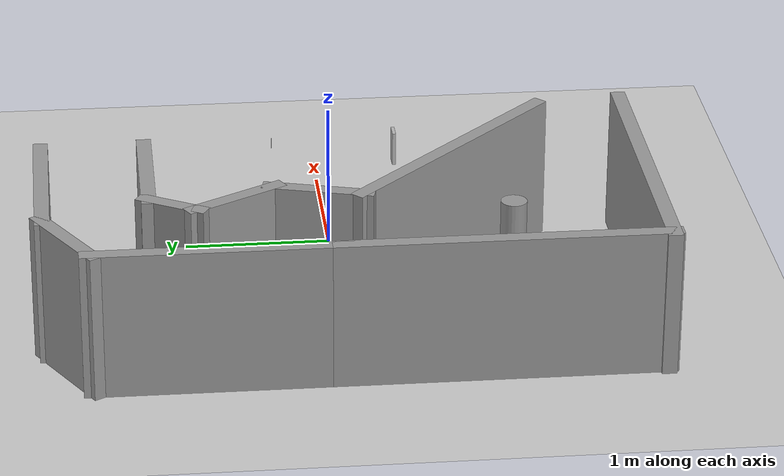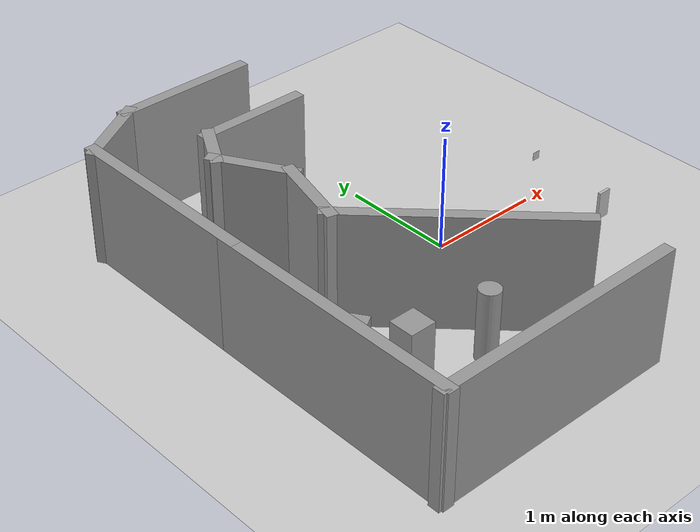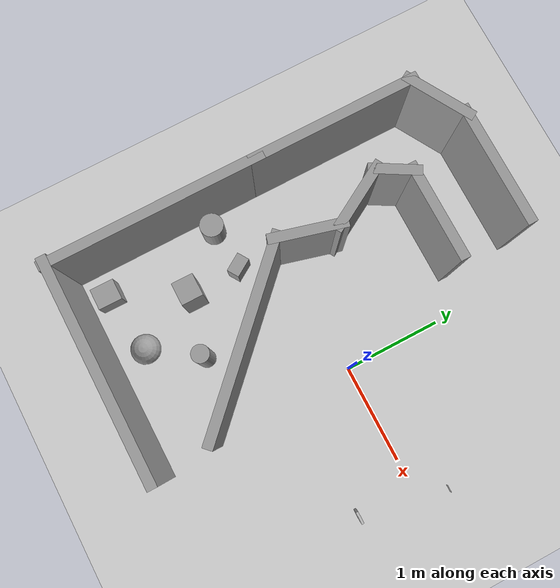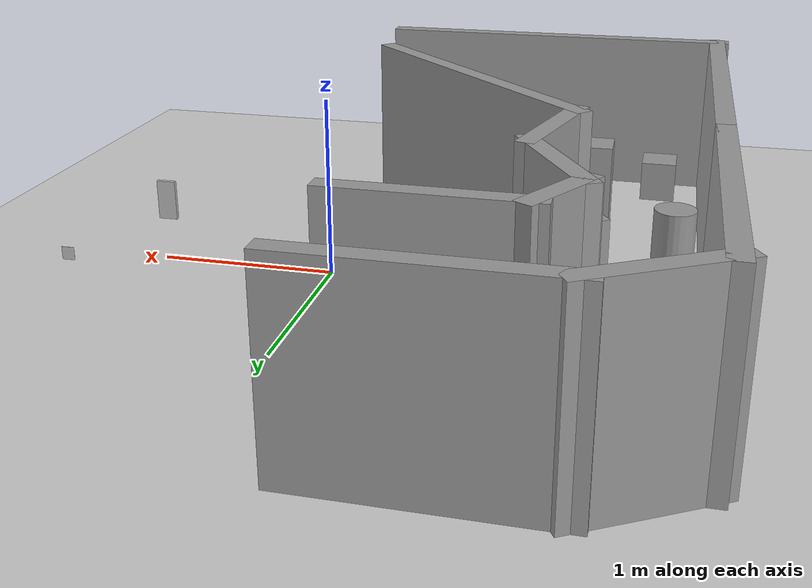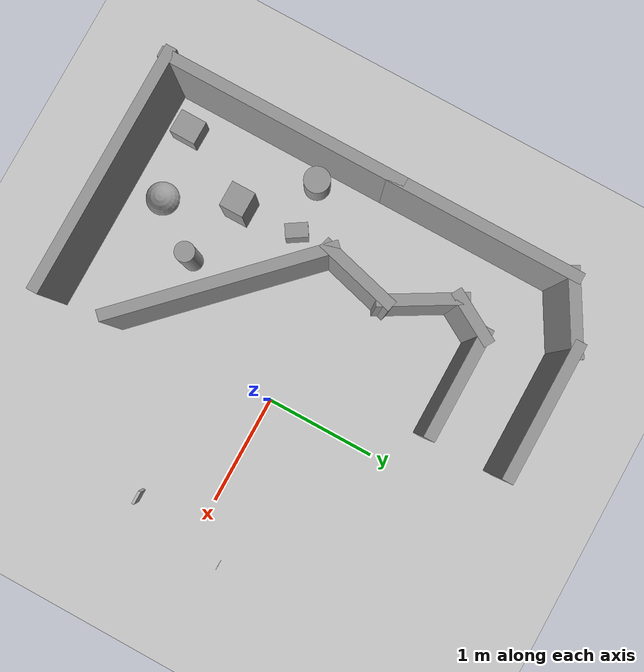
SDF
<sdf version="1.7">
 <world name="capstone_project">
  <scene>
   <ambient>0 0 0 1</ambient>
   <shadows>0</shadows>
   <grid>0</grid>
   <background>0.7 0.7 0.7 1</background>
  </scene>
  <light name="sun" type="directional">
   <pose>0 0 10 0 -0 0</pose>
   <diffuse>0.8 0.8 0.8 1</diffuse>
   <specular>0.1 0.1 0.1 1</specular>
   <attenuation>
    <range>1000</range>
    <constant>0.9</constant>
    <linear>0.01</linear>
    <quadratic>0.001</quadratic>
   </attenuation>
   <direction>-0.5 0.5 -1</direction>
   <spot><inner_angle>0</inner_angle><outer_angle>0</outer_angle><falloff>0</falloff></spot>
  </light>
  <gravity>0 0 -9.8</gravity>
  <magnetic_field>6e-06 2.3e-05 -4.2e-05</magnetic_field>
  <atmosphere type="adiabatic"/>
  <physics name="default_physics" default="0" type="ode">
   <max_step_size>0.001</max_step_size>
   <real_time_factor>1</real_time_factor>
   <real_time_update_rate>1000</real_time_update_rate>
  </physics>
  <spherical_coordinates>
   <surface_model>EARTH_WGS84</surface_model>
   <latitude_deg>0</latitude_deg>
   <longitude_deg>0</longitude_deg>
   <elevation>0</elevation>
   <heading_deg>0</heading_deg>
  </spherical_coordinates>
  <light name="user_point_light_2" type="point">
   <pose>-0.948146 0.604519 1 0 -0 0</pose>
   <diffuse>0.5 0.5 0.5 1</diffuse>
   <specular>0.1 0.1 0.1 1</specular>
   <attenuation>
    <range>20</range>
    <constant>0.5</constant>
    <linear>0.01</linear>
    <quadratic>0.001</quadratic>
   </attenuation>
   <cast_shadows>0</cast_shadows>
   <direction>0 0 -1</direction>
   <spot><inner_angle>0</inner_angle><outer_angle>0</outer_angle><falloff>0</falloff></spot>
  </light>
  <light name="user_point_light_6" type="point">
   <pose>1.63854 1.69565 1 0 -0 0</pose>
   <diffuse>0.5 0.5 0.5 1</diffuse>
   <specular>0.1 0.1 0.1 1</specular>
   <attenuation>
    <range>20</range>
    <constant>0.5</constant>
    <linear>0.01</linear>
    <quadratic>0.001</quadratic>
   </attenuation>
   <cast_shadows>0</cast_shadows>
   <direction>0 0 -1</direction>
   <spot><inner_angle>0</inner_angle><outer_angle>0</outer_angle><falloff>0</falloff></spot>
  </light>
  <light name="user_point_light_7" type="point">
   <pose>0.42 -3.31 1 0 -0 0</pose>
   <diffuse>0.5 0.5 0.5 1</diffuse>
   <specular>0.1 0.1 0.1 1</specular>
   <attenuation>
    <range>20</range>
    <constant>0.5</constant>
    <linear>0.01</linear>
    <quadratic>0.001</quadratic>
   </attenuation>
   <cast_shadows>0</cast_shadows>
   <direction>0 0 -1</direction>
   <spot><inner_angle>0</inner_angle><outer_angle>0</outer_angle><falloff>0</falloff></spot>
  </light>
  <light name="user_point_light_8" type="point">
   <pose>-1.8 1.5 1 0 -0 0</pose>
   <diffuse>0.5 0.5 0.5 1</diffuse>
   <specular>0.1 0.1 0.1 1</specular>
   <attenuation>
    <range>20</range>
    <constant>0.5</constant>
    <linear>0.01</linear>
    <quadratic>0.001</quadratic>
   </attenuation>
   <cast_shadows>0</cast_shadows>
   <direction>0 0 -1</direction>
   <spot><inner_angle>0</inner_angle><outer_angle>0</outer_angle><falloff>0</falloff></spot>
  </light>
  <model name="walls">
   <link name="Wall_10">
    <pose>0.35664 -0.75882 0 0 -0 2.35619</pose>
    <inertial>
     <mass>1</mass>
     <inertia><ixx>1</ixx><ixy>0</ixy><ixz>0</ixz><iyy>1</iyy><iyz>0</iyz><izz>1</izz></inertia>
    </inertial>
    <visual name="Wall_10_Visual">
     <pose>0 0 0.5 0 -0 0</pose>
     <geometry><box><size>2 0.1 1</size></box></geometry>
     <material>
      <script><uri>file://media/materials/scripts/gazebo.material</uri><name>Gazebo/Grey</name></script>
      <ambient>1 1 1 1</ambient>
      <shader type="pixel"><normal_map>__default__</normal_map></shader>
     </material>
    </visual>
    <collision name="Wall_10_Collision">
     <pose>0 0 0.5 0 -0 0</pose>
     <geometry><box><size>2 0.1 1</size></box></geometry>
     <surface>
      <friction>
       <ode><mu>1</mu><mu2>1</mu2><fdir1>0 0 0</fdir1><slip1>0</slip1><slip2>0</slip2></ode>
       <torsional>
        <coefficient>1</coefficient>
        <patch_radius>0</patch_radius>
        <surface_radius>0</surface_radius>
        <use_patch_radius>1</use_patch_radius>
        <ode><slip>0</slip></ode>
       </torsional>
      </friction>
      <bounce><restitution_coefficient>0</restitution_coefficient><threshold>1e+06</threshold></bounce>
      <contact>
       <collide_without_contact>0</collide_without_contact>
       <collide_without_contact_bitmask>1</collide_without_contact_bitmask>
       <collide_bitmask>1</collide_bitmask>
       <ode>
        <soft_cfm>0</soft_cfm>
        <soft_erp>0.2</soft_erp>
        <kp>1e+13</kp>
        <kd>1</kd>
        <max_vel>0.01</max_vel>
        <min_depth>0</min_depth>
       </ode>
       <bullet>
        <split_impulse>1</split_impulse>
        <split_impulse_penetration_threshold>-0.01</split_impulse_penetration_threshold>
        <soft_cfm>0</soft_cfm>
        <soft_erp>0.2</soft_erp>
        <kp>1e+13</kp>
        <kd>1</kd>
       </bullet>
      </contact>
     </surface>
    </collision>
   </link>
   <link name="Wall_12">
    <pose>0.01372 -2.01873 0 0 -0 3.14159</pose>
    <visual name="Wall_12_Visual">
     <pose>0 0 0.5 0 -0 0</pose>
     <geometry><box><size>2.26002 0.1 1</size></box></geometry>
     <material>
      <script><uri>file://media/materials/scripts/gazebo.material</uri><name>Gazebo/Grey</name></script>
      <ambient>1 1 1 1</ambient>
      <shader type="pixel"/>
     </material>
    </visual>
    <collision name="Wall_12_Collision">
     <pose>0 0 0.5 0 -0 0</pose>
     <geometry><box><size>2.26002 0.1 1</size></box></geometry>
     <surface>
      <friction>
       <ode><mu>1</mu><mu2>1</mu2><fdir1>0 0 0</fdir1><slip1>0</slip1><slip2>0</slip2></ode>
       <torsional>
        <coefficient>1</coefficient>
        <patch_radius>0</patch_radius>
        <surface_radius>0</surface_radius>
        <use_patch_radius>1</use_patch_radius>
        <ode><slip>0</slip></ode>
       </torsional>
      </friction>
      <bounce><restitution_coefficient>0</restitution_coefficient><threshold>1e+06</threshold></bounce>
      <contact>
       <collide_without_contact>0</collide_without_contact>
       <collide_without_contact_bitmask>1</collide_without_contact_bitmask>
       <collide_bitmask>1</collide_bitmask>
       <ode>
        <soft_cfm>0</soft_cfm>
        <soft_erp>0.2</soft_erp>
        <kp>1e+13</kp>
        <kd>1</kd>
        <max_vel>0.01</max_vel>
        <min_depth>0</min_depth>
       </ode>
       <bullet>
        <split_impulse>1</split_impulse>
        <split_impulse_penetration_threshold>-0.01</split_impulse_penetration_threshold>
        <soft_cfm>0</soft_cfm>
        <soft_erp>0.2</soft_erp>
        <kp>1e+13</kp>
        <kd>1</kd>
       </bullet>
      </contact>
     </surface>
    </collision>
   </link>
   <link name="Wall_13">
    <pose>-1.04128 -0.958726 0 0 -0 1.5708</pose>
    <visual name="Wall_13_Visual">
     <pose>0 0 0.5 0 -0 0</pose>
     <geometry><box><size>2.25 0.1 1</size></box></geometry>
     <material>
      <script><uri>file://media/materials/scripts/gazebo.material</uri><name>Gazebo/Grey</name></script>
      <ambient>1 1 1 1</ambient>
      <shader type="pixel"/>
     </material>
    </visual>
    <collision name="Wall_13_Collision">
     <pose>0 0 0.5 0 -0 0</pose>
     <geometry><box><size>2.25 0.1 1</size></box></geometry>
     <surface>
      <friction>
       <ode><mu>1</mu><mu2>1</mu2><fdir1>0 0 0</fdir1><slip1>0</slip1><slip2>0</slip2></ode>
       <torsional>
        <coefficient>1</coefficient>
        <patch_radius>0</patch_radius>
        <surface_radius>0</surface_radius>
        <use_patch_radius>1</use_patch_radius>
        <ode><slip>0</slip></ode>
       </torsional>
      </friction>
      <bounce><restitution_coefficient>0</restitution_coefficient><threshold>1e+06</threshold></bounce>
      <contact>
       <collide_without_contact>0</collide_without_contact>
       <collide_without_contact_bitmask>1</collide_without_contact_bitmask>
       <collide_bitmask>1</collide_bitmask>
       <ode>
        <soft_cfm>0</soft_cfm>
        <soft_erp>0.2</soft_erp>
        <kp>1e+13</kp>
        <kd>1</kd>
        <max_vel>0.01</max_vel>
        <min_depth>0</min_depth>
       </ode>
       <bullet>
        <split_impulse>1</split_impulse>
        <split_impulse_penetration_threshold>-0.01</split_impulse_penetration_threshold>
        <soft_cfm>0</soft_cfm>
        <soft_erp>0.2</soft_erp>
        <kp>1e+13</kp>
        <kd>1</kd>
       </bullet>
      </contact>
     </surface>
    </collision>
   </link>
   <link name="Wall_19">
    <pose>-1.04128 0.891274 0 0 -0 1.5708</pose>
    <visual name="Wall_19_Visual">
     <pose>0 0 0.5 0 -0 0</pose>
     <geometry><box><size>1.75 0.1 1</size></box></geometry>
     <material>
      <script><uri>file://media/materials/scripts/gazebo.material</uri><name>Gazebo/Grey</name></script>
      <ambient>1 1 1 1</ambient>
      <shader type="pixel"/>
     </material>
    </visual>
    <collision name="Wall_19_Collision">
     <pose>0 0 0.5 0 -0 0</pose>
     <geometry><box><size>1.75 0.1 1</size></box></geometry>
     <surface>
      <friction>
       <ode><mu>1</mu><mu2>1</mu2><fdir1>0 0 0</fdir1><slip1>0</slip1><slip2>0</slip2></ode>
       <torsional>
        <coefficient>1</coefficient>
        <patch_radius>0</patch_radius>
        <surface_radius>0</surface_radius>
        <use_patch_radius>1</use_patch_radius>
        <ode><slip>0</slip></ode>
       </torsional>
      </friction>
      <bounce><restitution_coefficient>0</restitution_coefficient><threshold>1e+06</threshold></bounce>
      <contact>
       <collide_without_contact>0</collide_without_contact>
       <collide_without_contact_bitmask>1</collide_without_contact_bitmask>
       <collide_bitmask>1</collide_bitmask>
       <ode>
        <soft_cfm>0</soft_cfm>
        <soft_erp>0.2</soft_erp>
        <kp>1e+13</kp>
        <kd>1</kd>
        <max_vel>0.01</max_vel>
        <min_depth>0</min_depth>
       </ode>
       <bullet>
        <split_impulse>1</split_impulse>
        <split_impulse_penetration_threshold>-0.01</split_impulse_penetration_threshold>
        <soft_cfm>0</soft_cfm>
        <soft_erp>0.2</soft_erp>
        <kp>1e+13</kp>
        <kd>1</kd>
       </bullet>
      </contact>
     </surface>
    </collision>
   </link>
   <link name="Wall_21">
    <pose>-0.781472 1.84127 0 0 -0 0.523599</pose>
    <visual name="Wall_21_Visual">
     <pose>0 0 0.5 0 -0 0</pose>
     <geometry><box><size>0.75 0.1 1</size></box></geometry>
     <material>
      <script><uri>file://media/materials/scripts/gazebo.material</uri><name>Gazebo/Grey</name></script>
      <ambient>1 1 1 1</ambient>
      <shader type="pixel"/>
     </material>
    </visual>
    <collision name="Wall_21_Collision">
     <pose>0 0 0.5 0 -0 0</pose>
     <geometry><box><size>0.75 0.1 1</size></box></geometry>
     <surface>
      <friction>
       <ode><mu>1</mu><mu2>1</mu2><fdir1>0 0 0</fdir1><slip1>0</slip1><slip2>0</slip2></ode>
       <torsional>
        <coefficient>1</coefficient>
        <patch_radius>0</patch_radius>
        <surface_radius>0</surface_radius>
        <use_patch_radius>1</use_patch_radius>
        <ode><slip>0</slip></ode>
       </torsional>
      </friction>
      <bounce><restitution_coefficient>0</restitution_coefficient><threshold>1e+06</threshold></bounce>
      <contact>
       <collide_without_contact>0</collide_without_contact>
       <collide_without_contact_bitmask>1</collide_without_contact_bitmask>
       <collide_bitmask>1</collide_bitmask>
       <ode>
        <soft_cfm>0</soft_cfm>
        <soft_erp>0.2</soft_erp>
        <kp>1e+13</kp>
        <kd>1</kd>
        <max_vel>0.01</max_vel>
        <min_depth>0</min_depth>
       </ode>
       <bullet>
        <split_impulse>1</split_impulse>
        <split_impulse_penetration_threshold>-0.01</split_impulse_penetration_threshold>
        <soft_cfm>0</soft_cfm>
        <soft_erp>0.2</soft_erp>
        <kp>1e+13</kp>
        <kd>1</kd>
       </bullet>
      </contact>
     </surface>
    </collision>
   </link>
   <link name="Wall_22">
    <pose>0.028335 1.99127 0 0 -0 0</pose>
    <visual name="Wall_22_Visual">
     <pose>0 0 0.5 0 -0 0</pose>
     <geometry><box><size>1.25 0.1 1</size></box></geometry>
     <material>
      <script><uri>file://media/materials/scripts/gazebo.material</uri><name>Gazebo/Grey</name></script>
      <ambient>1 1 1 1</ambient>
      <shader type="pixel"/>
     </material>
    </visual>
    <collision name="Wall_22_Collision">
     <pose>0 0 0.5 0 -0 0</pose>
     <geometry><box><size>1.25 0.1 1</size></box></geometry>
     <surface>
      <friction>
       <ode><mu>1</mu><mu2>1</mu2><fdir1>0 0 0</fdir1><slip1>0</slip1><slip2>0</slip2></ode>
       <torsional>
        <coefficient>1</coefficient>
        <patch_radius>0</patch_radius>
        <surface_radius>0</surface_radius>
        <use_patch_radius>1</use_patch_radius>
        <ode><slip>0</slip></ode>
       </torsional>
      </friction>
      <bounce><restitution_coefficient>0</restitution_coefficient><threshold>1e+06</threshold></bounce>
      <contact>
       <collide_without_contact>0</collide_without_contact>
       <collide_without_contact_bitmask>1</collide_without_contact_bitmask>
       <collide_bitmask>1</collide_bitmask>
       <ode>
        <soft_cfm>0</soft_cfm>
        <soft_erp>0.2</soft_erp>
        <kp>1e+13</kp>
        <kd>1</kd>
        <max_vel>0.01</max_vel>
        <min_depth>0</min_depth>
       </ode>
       <bullet>
        <split_impulse>1</split_impulse>
        <split_impulse_penetration_threshold>-0.01</split_impulse_penetration_threshold>
        <soft_cfm>0</soft_cfm>
        <soft_erp>0.2</soft_erp>
        <kp>1e+13</kp>
        <kd>1</kd>
       </bullet>
      </contact>
     </surface>
    </collision>
   </link>
   <link name="Wall_24">
    <pose>-0.219788 0.185031 0 0 -0 1.309</pose>
    <visual name="Wall_24_Visual">
     <pose>0 0 0.5 0 -0 0</pose>
     <geometry><box><size>0.75 0.1 1</size></box></geometry>
     <material>
      <script><uri>file://media/materials/scripts/gazebo.material</uri><name>Gazebo/Grey</name></script>
      <ambient>1 1 1 1</ambient>
      <shader type="pixel"/>
     </material>
    </visual>
    <collision name="Wall_24_Collision">
     <pose>0 0 0.5 0 -0 0</pose>
     <geometry><box><size>0.75 0.1 1</size></box></geometry>
     <surface>
      <friction>
       <ode><mu>1</mu><mu2>1</mu2><fdir1>0 0 0</fdir1><slip1>0</slip1><slip2>0</slip2></ode>
       <torsional>
        <coefficient>1</coefficient>
        <patch_radius>0</patch_radius>
        <surface_radius>0</surface_radius>
        <use_patch_radius>1</use_patch_radius>
        <ode><slip>0</slip></ode>
       </torsional>
      </friction>
      <bounce><restitution_coefficient>0</restitution_coefficient><threshold>1e+06</threshold></bounce>
      <contact>
       <collide_without_contact>0</collide_without_contact>
       <collide_without_contact_bitmask>1</collide_without_contact_bitmask>
       <collide_bitmask>1</collide_bitmask>
       <ode>
        <soft_cfm>0</soft_cfm>
        <soft_erp>0.2</soft_erp>
        <kp>1e+13</kp>
        <kd>1</kd>
        <max_vel>0.01</max_vel>
        <min_depth>0</min_depth>
       </ode>
       <bullet>
        <split_impulse>1</split_impulse>
        <split_impulse_penetration_threshold>-0.01</split_impulse_penetration_threshold>
        <soft_cfm>0</soft_cfm>
        <soft_erp>0.2</soft_erp>
        <kp>1e+13</kp>
        <kd>1</kd>
       </bullet>
      </contact>
     </surface>
    </collision>
   </link>
   <link name="Wall_25">
    <pose>-0.292142 0.734617 0 0 -0 2.0944</pose>
    <visual name="Wall_25_Visual">
     <pose>0 0 0.5 0 -0 0</pose>
     <geometry><box><size>0.75 0.1 1</size></box></geometry>
     <material>
      <script><uri>file://media/materials/scripts/gazebo.material</uri><name>Gazebo/Grey</name></script>
      <ambient>1 1 1 1</ambient>
      <shader type="pixel"/>
     </material>
    </visual>
    <collision name="Wall_25_Collision">
     <pose>0 0 0.5 0 -0 0</pose>
     <geometry><box><size>0.75 0.1 1</size></box></geometry>
     <surface>
      <friction>
       <ode><mu>1</mu><mu2>1</mu2><fdir1>0 0 0</fdir1><slip1>0</slip1><slip2>0</slip2></ode>
       <torsional>
        <coefficient>1</coefficient>
        <patch_radius>0</patch_radius>
        <surface_radius>0</surface_radius>
        <use_patch_radius>1</use_patch_radius>
        <ode><slip>0</slip></ode>
       </torsional>
      </friction>
      <bounce><restitution_coefficient>0</restitution_coefficient><threshold>1e+06</threshold></bounce>
      <contact>
       <collide_without_contact>0</collide_without_contact>
       <collide_without_contact_bitmask>1</collide_without_contact_bitmask>
       <collide_bitmask>1</collide_bitmask>
       <ode>
        <soft_cfm>0</soft_cfm>
        <soft_erp>0.2</soft_erp>
        <kp>1e+13</kp>
        <kd>1</kd>
        <max_vel>0.01</max_vel>
        <min_depth>0</min_depth>
       </ode>
       <bullet>
        <split_impulse>1</split_impulse>
        <split_impulse_penetration_threshold>-0.01</split_impulse_penetration_threshold>
        <soft_cfm>0</soft_cfm>
        <soft_erp>0.2</soft_erp>
        <kp>1e+13</kp>
        <kd>1</kd>
       </bullet>
      </contact>
     </surface>
    </collision>
   </link>
   <link name="Wall_26">
    <pose>-0.354642 1.14598 0 0 -0 1.0472</pose>
    <visual name="Wall_26_Visual">
     <pose>0 0 0.5 0 -0 0</pose>
     <geometry><box><size>0.5 0.1 1</size></box></geometry>
     <material>
      <script><uri>file://media/materials/scripts/gazebo.material</uri><name>Gazebo/Grey</name></script>
      <ambient>1 1 1 1</ambient>
      <shader type="pixel"/>
     </material>
    </visual>
    <collision name="Wall_26_Collision">
     <pose>0 0 0.5 0 -0 0</pose>
     <geometry><box><size>0.5 0.1 1</size></box></geometry>
     <surface>
      <friction>
       <ode><mu>1</mu><mu2>1</mu2><fdir1>0 0 0</fdir1><slip1>0</slip1><slip2>0</slip2></ode>
       <torsional>
        <coefficient>1</coefficient>
        <patch_radius>0</patch_radius>
        <surface_radius>0</surface_radius>
        <use_patch_radius>1</use_patch_radius>
        <ode><slip>0</slip></ode>
       </torsional>
      </friction>
      <bounce><restitution_coefficient>0</restitution_coefficient><threshold>1e+06</threshold></bounce>
      <contact>
       <collide_without_contact>0</collide_without_contact>
       <collide_without_contact_bitmask>1</collide_without_contact_bitmask>
       <collide_bitmask>1</collide_bitmask>
       <ode>
        <soft_cfm>0</soft_cfm>
        <soft_erp>0.2</soft_erp>
        <kp>1e+13</kp>
        <kd>1</kd>
        <max_vel>0.01</max_vel>
        <min_depth>0</min_depth>
       </ode>
       <bullet>
        <split_impulse>1</split_impulse>
        <split_impulse_penetration_threshold>-0.01</split_impulse_penetration_threshold>
        <soft_cfm>0</soft_cfm>
        <soft_erp>0.2</soft_erp>
        <kp>1e+13</kp>
        <kd>1</kd>
       </bullet>
      </contact>
     </surface>
    </collision>
   </link>
   <link name="Wall_27">
    <pose>0.157858 1.29753 0 0 -0 0</pose>
    <visual name="Wall_27_Visual">
     <pose>0 0 0.5 0 -0 0</pose>
     <geometry><box><size>1 0.1 1</size></box></geometry>
     <material>
      <script><uri>file://media/materials/scripts/gazebo.material</uri><name>Gazebo/Grey</name></script>
      <ambient>1 1 1 1</ambient>
      <shader type="pixel"/>
     </material>
    </visual>
    <collision name="Wall_27_Collision">
     <pose>0 0 0.5 0 -0 0</pose>
     <geometry><box><size>1 0.1 1</size></box></geometry>
     <surface>
      <friction>
       <ode><mu>1</mu><mu2>1</mu2><fdir1>0 0 0</fdir1><slip1>0</slip1><slip2>0</slip2></ode>
       <torsional>
        <coefficient>1</coefficient>
        <patch_radius>0</patch_radius>
        <surface_radius>0</surface_radius>
        <use_patch_radius>1</use_patch_radius>
        <ode><slip>0</slip></ode>
       </torsional>
      </friction>
      <bounce><restitution_coefficient>0</restitution_coefficient><threshold>1e+06</threshold></bounce>
      <contact>
       <collide_without_contact>0</collide_without_contact>
       <collide_without_contact_bitmask>1</collide_without_contact_bitmask>
       <collide_bitmask>1</collide_bitmask>
       <ode>
        <soft_cfm>0</soft_cfm>
        <soft_erp>0.2</soft_erp>
        <kp>1e+13</kp>
        <kd>1</kd>
        <max_vel>0.01</max_vel>
        <min_depth>0</min_depth>
       </ode>
       <bullet>
        <split_impulse>1</split_impulse>
        <split_impulse_penetration_threshold>-0.01</split_impulse_penetration_threshold>
        <soft_cfm>0</soft_cfm>
        <soft_erp>0.2</soft_erp>
        <kp>1e+13</kp>
        <kd>1</kd>
       </bullet>
      </contact>
     </surface>
    </collision>
   </link>
   <static>1</static>
   <pose>-1.00889 -0.012836 0 0 -0 0</pose>
  </model>
  <model name="ground">
   <static>1</static>
   <link name="ground_link">
    <collision name="ground_collision">
     <geometry><plane><normal>0 0 1</normal><size>4 4</size></plane></geometry>
     <surface><friction><ode><mu>100</mu><mu2>50</mu2></ode></friction></surface>
    </collision>
    <visual name="ground_visual">
     <cast_shadows>0</cast_shadows>
     <geometry><plane><normal>0 0 1</normal><size>4 4</size></plane></geometry>
     <material><script><uri>model://ground</uri><name>ground</name></script></material>
    </visual>
   </link>
   <pose>0 0 0 0 -0 1.5708</pose>
  </model>
  <model name="traffic_sign">
   <link name="box">
    <inertial>
     <mass>1</mass>
     <inertia><ixx>1</ixx><ixy>0</ixy><ixz>0</ixz><iyy>1</iyy><iyz>0</iyz><izz>1</izz></inertia>
    </inertial>
    <visual name="visual">
     <geometry><box><size>0.12 0.025 0.25</size></box></geometry>
     <material>
      <script><uri>model://traffic_sign</uri><name>traffic_sign</name></script>
      <shader type="pixel"><normal_map>__default__</normal_map></shader>
     </material>
    </visual>
    <collision name="collision">
     <geometry><box><size>0.12 0.025 0.25</size></box></geometry>
     <surface>
      <friction>
       <ode><mu>1</mu><mu2>1</mu2><fdir1>0 0 0</fdir1><slip1>0</slip1><slip2>0</slip2></ode>
       <torsional>
        <coefficient>1</coefficient>
        <patch_radius>0</patch_radius>
        <surface_radius>0</surface_radius>
        <use_patch_radius>1</use_patch_radius>
        <ode><slip>0</slip></ode>
       </torsional>
      </friction>
      <bounce><restitution_coefficient>0</restitution_coefficient><threshold>1e+06</threshold></bounce>
      <contact>
       <collide_without_contact>0</collide_without_contact>
       <collide_without_contact_bitmask>1</collide_without_contact_bitmask>
       <collide_bitmask>1</collide_bitmask>
       <ode>
        <soft_cfm>0</soft_cfm>
        <soft_erp>0.2</soft_erp>
        <kp>1e+13</kp>
        <kd>1</kd>
        <max_vel>0.01</max_vel>
        <min_depth>0</min_depth>
       </ode>
       <bullet>
        <split_impulse>1</split_impulse>
        <split_impulse_penetration_threshold>-0.01</split_impulse_penetration_threshold>
        <soft_cfm>0</soft_cfm>
        <soft_erp>0.2</soft_erp>
        <kp>1e+13</kp>
        <kd>1</kd>
       </bullet>
      </contact>
     </surface>
    </collision>
   </link>
   <static>1</static>
   <pose>1.2689 -0.587152 0.126884 0 -0 0</pose>
  </model>
  <model name="obstacles">
   <link name="link">
    <inertial>
     <mass>1</mass>
     <inertia>
      <ixx>0.166667</ixx>
      <ixy>0</ixy>
      <ixz>0</ixz>
      <iyy>0.166667</iyy>
      <iyz>0</iyz>
      <izz>0.166667</izz>
     </inertia>
    </inertial>
    <pose>-1.33179 -0.434126 -0.357736 0 -0 0.564849</pose>
    <visual name="visual">
     <geometry><box><size>0.130992 0.203212 0.284528</size></box></geometry>
     <material>
      <script><name>Gazebo/Grey</name><uri>file://media/materials/scripts/gazebo.material</uri></script>
      <shader type="pixel"><normal_map>__default__</normal_map></shader>
      <ambient>0.3 0.3 0.3 1</ambient>
      <diffuse>0.7 0.7 0.7 1</diffuse>
      <specular>0.01 0.01 0.01 1</specular>
      <emissive>0 0 0 1</emissive>
     </material>
    </visual>
    <collision name="collision">
     <geometry><box><size>0.130992 0.203212 0.284528</size></box></geometry>
     <surface>
      <friction>
       <ode><mu>1</mu><mu2>1</mu2><fdir1>0 0 0</fdir1><slip1>0</slip1><slip2>0</slip2></ode>
       <torsional>
        <coefficient>1</coefficient>
        <patch_radius>0</patch_radius>
        <surface_radius>0</surface_radius>
        <use_patch_radius>1</use_patch_radius>
        <ode><slip>0</slip></ode>
       </torsional>
      </friction>
      <bounce><restitution_coefficient>0</restitution_coefficient><threshold>1e+06</threshold></bounce>
      <contact>
       <collide_without_contact>0</collide_without_contact>
       <collide_without_contact_bitmask>1</collide_without_contact_bitmask>
       <collide_bitmask>1</collide_bitmask>
       <ode>
        <soft_cfm>0</soft_cfm>
        <soft_erp>0.2</soft_erp>
        <kp>1e+13</kp>
        <kd>1</kd>
        <max_vel>0.01</max_vel>
        <min_depth>0</min_depth>
       </ode>
       <bullet>
        <split_impulse>1</split_impulse>
        <split_impulse_penetration_threshold>-0.01</split_impulse_penetration_threshold>
        <soft_cfm>0</soft_cfm>
        <soft_erp>0.2</soft_erp>
        <kp>1e+13</kp>
        <kd>1</kd>
       </bullet>
      </contact>
     </surface>
    </collision>
   </link>
   <link name="link_2">
    <inertial>
     <mass>1</mass>
     <inertia><ixx>0.145833</ixx><ixy>0</ixy><ixz>0</ixz><iyy>0.145833</iyy><iyz>0</iyz><izz>0.125</izz></inertia>
    </inertial>
    <pose>-1.79426 -0.486175 -0.33 0 -0 0</pose>
    <visual name="visual">
     <geometry><cylinder><radius>0.12</radius><length>0.34</length></cylinder></geometry>
     <material>
      <lighting>1</lighting>
      <script><uri>file://media/materials/scripts/gazebo.material</uri><name>Gazebo/Grey</name></script>
      <shader type="pixel"><normal_map>__default__</normal_map></shader>
      <ambient>0.3 0.3 0.3 1</ambient>
      <diffuse>0.7 0.7 0.7 1</diffuse>
      <specular>0.01 0.01 0.01 1</specular>
      <emissive>0 0 0 1</emissive>
     </material>
    </visual>
    <collision name="collision">
     <geometry><cylinder><radius>0.12</radius><length>0.34</length></cylinder></geometry>
     <surface>
      <friction>
       <ode><mu>1</mu><mu2>1</mu2><fdir1>0 0 0</fdir1><slip1>0</slip1><slip2>0</slip2></ode>
       <torsional>
        <coefficient>1</coefficient>
        <patch_radius>0</patch_radius>
        <surface_radius>0</surface_radius>
        <use_patch_radius>1</use_patch_radius>
        <ode><slip>0</slip></ode>
       </torsional>
      </friction>
      <bounce><restitution_coefficient>0</restitution_coefficient><threshold>1e+06</threshold></bounce>
      <contact>
       <collide_without_contact>0</collide_without_contact>
       <collide_without_contact_bitmask>1</collide_without_contact_bitmask>
       <collide_bitmask>1</collide_bitmask>
       <ode>
        <soft_cfm>0</soft_cfm>
        <soft_erp>0.2</soft_erp>
        <kp>1e+13</kp>
        <kd>1</kd>
        <max_vel>0.01</max_vel>
        <min_depth>0</min_depth>
       </ode>
       <bullet>
        <split_impulse>1</split_impulse>
        <split_impulse_penetration_threshold>-0.01</split_impulse_penetration_threshold>
        <soft_cfm>0</soft_cfm>
        <soft_erp>0.2</soft_erp>
        <kp>1e+13</kp>
        <kd>1</kd>
       </bullet>
      </contact>
     </surface>
    </collision>
   </link>
   <link name="link_3">
    <inertial>
     <mass>1</mass>
     <inertia>
      <ixx>0.166667</ixx>
      <ixy>0</ixy>
      <ixz>0</ixz>
      <iyy>0.166667</iyy>
      <iyz>0</iyz>
      <izz>0.166667</izz>
     </inertia>
    </inertial>
    <pose>-1.28907 -0.972289 -0.224349 0 -0 0</pose>
    <visual name="visual">
     <geometry><box><size>0.231874 0.221189 0.551301</size></box></geometry>
     <material>
      <lighting>1</lighting>
      <script><uri>file://media/materials/scripts/gazebo.material</uri><name>Gazebo/Grey</name></script>
      <shader type="pixel"><normal_map>__default__</normal_map></shader>
      <ambient>0.3 0.3 0.3 1</ambient>
      <diffuse>0.7 0.7 0.7 1</diffuse>
      <specular>0.01 0.01 0.01 1</specular>
      <emissive>0 0 0 1</emissive>
     </material>
    </visual>
    <collision name="collision">
     <geometry><box><size>0.231874 0.221189 0.551301</size></box></geometry>
     <surface>
      <friction>
       <ode><mu>1</mu><mu2>1</mu2><fdir1>0 0 0</fdir1><slip1>0</slip1><slip2>0</slip2></ode>
       <torsional>
        <coefficient>1</coefficient>
        <patch_radius>0</patch_radius>
        <surface_radius>0</surface_radius>
        <use_patch_radius>1</use_patch_radius>
        <ode><slip>0</slip></ode>
       </torsional>
      </friction>
      <bounce><restitution_coefficient>0</restitution_coefficient><threshold>1e+06</threshold></bounce>
      <contact>
       <collide_without_contact>0</collide_without_contact>
       <collide_without_contact_bitmask>1</collide_without_contact_bitmask>
       <collide_bitmask>1</collide_bitmask>
       <ode>
        <soft_cfm>0</soft_cfm>
        <soft_erp>0.2</soft_erp>
        <kp>1e+13</kp>
        <kd>1</kd>
        <max_vel>0.01</max_vel>
        <min_depth>0</min_depth>
       </ode>
       <bullet>
        <split_impulse>1</split_impulse>
        <split_impulse_penetration_threshold>-0.01</split_impulse_penetration_threshold>
        <soft_cfm>0</soft_cfm>
        <soft_erp>0.2</soft_erp>
        <kp>1e+13</kp>
        <kd>1</kd>
       </bullet>
      </contact>
     </surface>
    </collision>
   </link>
   <link name="link_4">
    <inertial>
     <mass>1</mass>
     <inertia><ixx>0.145833</ixx><ixy>0</ixy><ixz>0</ixz><iyy>0.145833</iyy><iyz>0</iyz><izz>0.125</izz></inertia>
    </inertial>
    <pose>-0.683413 -1.1301 -0.19 0 -0 0</pose>
    <visual name="visual">
     <geometry><cylinder><radius>0.09</radius><length>0.62</length></cylinder></geometry>
     <material>
      <lighting>1</lighting>
      <script><uri>file://media/materials/scripts/gazebo.material</uri><name>Gazebo/Grey</name></script>
      <shader type="pixel"><normal_map>__default__</normal_map></shader>
      <ambient>0.3 0.3 0.3 1</ambient>
      <diffuse>0.7 0.7 0.7 1</diffuse>
      <specular>0.01 0.01 0.01 1</specular>
      <emissive>0 0 0 1</emissive>
     </material>
    </visual>
    <collision name="collision">
     <geometry><cylinder><radius>0.09</radius><length>0.62</length></cylinder></geometry>
     <surface>
      <friction>
       <ode><mu>1</mu><mu2>1</mu2><fdir1>0 0 0</fdir1><slip1>0</slip1><slip2>0</slip2></ode>
       <torsional>
        <coefficient>1</coefficient>
        <patch_radius>0</patch_radius>
        <surface_radius>0</surface_radius>
        <use_patch_radius>1</use_patch_radius>
        <ode><slip>0</slip></ode>
       </torsional>
      </friction>
      <bounce><restitution_coefficient>0</restitution_coefficient><threshold>1e+06</threshold></bounce>
      <contact>
       <collide_without_contact>0</collide_without_contact>
       <collide_without_contact_bitmask>1</collide_without_contact_bitmask>
       <collide_bitmask>1</collide_bitmask>
       <ode>
        <soft_cfm>0</soft_cfm>
        <soft_erp>0.2</soft_erp>
        <kp>1e+13</kp>
        <kd>1</kd>
        <max_vel>0.01</max_vel>
        <min_depth>0</min_depth>
       </ode>
       <bullet>
        <split_impulse>1</split_impulse>
        <split_impulse_penetration_threshold>-0.01</split_impulse_penetration_threshold>
        <soft_cfm>0</soft_cfm>
        <soft_erp>0.2</soft_erp>
        <kp>1e+13</kp>
        <kd>1</kd>
       </bullet>
      </contact>
     </surface>
    </collision>
   </link>
   <link name="link_5">
    <inertial>
     <mass>1</mass>
     <inertia><ixx>0.1</ixx><ixy>0</ixy><ixz>0</ixz><iyy>0.1</iyy><iyz>0</iyz><izz>0.1</izz></inertia>
    </inertial>
    <pose>-1.02848 -1.61152 -0.35 0 -0 0</pose>
    <visual name="visual">
     <geometry><sphere><radius>0.15</radius></sphere></geometry>
     <material>
      <lighting>1</lighting>
      <script><uri>file://media/materials/scripts/gazebo.material</uri><name>Gazebo/Grey</name></script>
      <shader type="pixel"><normal_map>__default__</normal_map></shader>
      <ambient>0.3 0.3 0.3 1</ambient>
      <diffuse>0.7 0.7 0.7 1</diffuse>
      <specular>0.01 0.01 0.01 1</specular>
      <emissive>0 0 0 1</emissive>
     </material>
    </visual>
    <collision name="collision">
     <geometry><sphere><radius>0.15</radius></sphere></geometry>
     <surface>
      <friction>
       <ode><mu>1</mu><mu2>1</mu2><fdir1>0 0 0</fdir1><slip1>0</slip1><slip2>0</slip2></ode>
       <torsional>
        <coefficient>1</coefficient>
        <patch_radius>0</patch_radius>
        <surface_radius>0</surface_radius>
        <use_patch_radius>1</use_patch_radius>
        <ode><slip>0</slip></ode>
       </torsional>
      </friction>
      <bounce><restitution_coefficient>0</restitution_coefficient><threshold>1e+06</threshold></bounce>
      <contact>
       <collide_without_contact>0</collide_without_contact>
       <collide_without_contact_bitmask>1</collide_without_contact_bitmask>
       <collide_bitmask>1</collide_bitmask>
       <ode>
        <soft_cfm>0</soft_cfm>
        <soft_erp>0.2</soft_erp>
        <kp>1e+13</kp>
        <kd>1</kd>
        <max_vel>0.01</max_vel>
        <min_depth>0</min_depth>
       </ode>
       <bullet>
        <split_impulse>1</split_impulse>
        <split_impulse_penetration_threshold>-0.01</split_impulse_penetration_threshold>
        <soft_cfm>0</soft_cfm>
        <soft_erp>0.2</soft_erp>
        <kp>1e+13</kp>
        <kd>1</kd>
       </bullet>
      </contact>
     </surface>
    </collision>
   </link>
   <link name="link_6">
    <inertial>
     <mass>1</mass>
     <inertia>
      <ixx>0.166667</ixx>
      <ixy>0</ixy>
      <ixz>0</ixz>
      <iyy>0.166667</iyy>
      <iyz>0</iyz>
      <izz>0.166667</izz>
     </inertia>
    </inertial>
    <pose>-1.67923 -1.71215 -0.4268 0 -0 1.56162</pose>
    <visual name="visual">
     <geometry><box><size>0.245846 0.219412 0.346399</size></box></geometry>
     <material>
      <lighting>1</lighting>
      <script><uri>file://media/materials/scripts/gazebo.material</uri><name>Gazebo/Grey</name></script>
      <shader type="pixel"><normal_map>__default__</normal_map></shader>
      <ambient>0.3 0.3 0.3 1</ambient>
      <diffuse>0.7 0.7 0.7 1</diffuse>
      <specular>0.01 0.01 0.01 1</specular>
      <emissive>0 0 0 1</emissive>
     </material>
    </visual>
    <collision name="collision">
     <geometry><box><size>0.245846 0.219412 0.346399</size></box></geometry>
     <surface>
      <friction>
       <ode><mu>1</mu><mu2>1</mu2><fdir1>0 0 0</fdir1><slip1>0</slip1><slip2>0</slip2></ode>
       <torsional>
        <coefficient>1</coefficient>
        <patch_radius>0</patch_radius>
        <surface_radius>0</surface_radius>
        <use_patch_radius>1</use_patch_radius>
        <ode><slip>0</slip></ode>
       </torsional>
      </friction>
      <bounce><restitution_coefficient>0</restitution_coefficient><threshold>1e+06</threshold></bounce>
      <contact>
       <collide_without_contact>0</collide_without_contact>
       <collide_without_contact_bitmask>1</collide_without_contact_bitmask>
       <collide_bitmask>1</collide_bitmask>
       <ode>
        <soft_cfm>0</soft_cfm>
        <soft_erp>0.2</soft_erp>
        <kp>1e+13</kp>
        <kd>1</kd>
        <max_vel>0.01</max_vel>
        <min_depth>0</min_depth>
       </ode>
       <bullet>
        <split_impulse>1</split_impulse>
        <split_impulse_penetration_threshold>-0.01</split_impulse_penetration_threshold>
        <soft_cfm>0</soft_cfm>
        <soft_erp>0.2</soft_erp>
        <kp>1e+13</kp>
        <kd>1</kd>
       </bullet>
      </contact>
     </surface>
    </collision>
   </link>
   <static>0</static>
   <pose>-0.060953 -0.062869 0.500002 4e-06 -0 -0.000586</pose>
  </model>
  <model name="apriltag">
   <link name="base_footprint">
    <inertial>
     <inertia><ixx>1</ixx><ixy>0</ixy><ixz>0</ixz><iyy>1</iyy><iyz>0</iyz><izz>1</izz></inertia>
     <mass>1</mass>
    </inertial>
   </link>
   <link name="base_link">
    <inertial>
     <pose>-0.032 0 0.07 0 -0 0</pose>
     <inertia>
      <ixx>0.723974</ixx>
      <ixy>4.6864e-10</ixy>
      <ixz>-1.09526e-08</ixz>
      <iyy>0.723974</iyy>
      <iyz>2.85826e-09</iyz>
      <izz>0.65305</izz>
     </inertia>
     <mass>0.825735</mass>
    </inertial>
    <collision name="base_collision">
     <pose>-0.032 0 0.07 0 -0 0</pose>
     <geometry><box><size>0.14 0.14 0.14</size></box></geometry>
     <surface>
      <friction>
       <ode><mu>1</mu><mu2>1</mu2><fdir1>0 0 0</fdir1><slip1>0</slip1><slip2>0</slip2></ode>
       <torsional>
        <coefficient>1</coefficient>
        <patch_radius>0</patch_radius>
        <surface_radius>0</surface_radius>
        <use_patch_radius>1</use_patch_radius>
        <ode><slip>0</slip></ode>
       </torsional>
      </friction>
      <bounce><restitution_coefficient>0</restitution_coefficient><threshold>1e+06</threshold></bounce>
      <contact>
       <collide_without_contact>0</collide_without_contact>
       <collide_without_contact_bitmask>1</collide_without_contact_bitmask>
       <collide_bitmask>1</collide_bitmask>
       <ode>
        <soft_cfm>0</soft_cfm>
        <soft_erp>0.2</soft_erp>
        <kp>1e+13</kp>
        <kd>1</kd>
        <max_vel>0.01</max_vel>
        <min_depth>0</min_depth>
       </ode>
       <bullet>
        <split_impulse>1</split_impulse>
        <split_impulse_penetration_threshold>-0.01</split_impulse_penetration_threshold>
        <soft_cfm>0</soft_cfm>
        <soft_erp>0.2</soft_erp>
        <kp>1e+13</kp>
        <kd>1</kd>
       </bullet>
      </contact>
     </surface>
    </collision>
   </link>
   <link name="caster_back_link">
    <pose>-0.081 -0 -0.004 -1.57 0 0</pose>
    <inertial>
     <mass>0.005</mass>
     <inertia><ixx>0.001</ixx><ixy>0</ixy><ixz>0</ixz><iyy>0.001</iyy><iyz>0</iyz><izz>0.001</izz></inertia>
    </inertial>
    <collision name="collision">
     <geometry><sphere><radius>0.005</radius></sphere></geometry>
     <surface>
      <friction>
       <ode><mu>1</mu><mu2>1</mu2><fdir1>0 0 0</fdir1><slip1>0</slip1><slip2>0</slip2></ode>
       <torsional>
        <coefficient>1</coefficient>
        <patch_radius>0</patch_radius>
        <surface_radius>0</surface_radius>
        <use_patch_radius>1</use_patch_radius>
        <ode><slip>0</slip></ode>
       </torsional>
      </friction>
      <bounce><restitution_coefficient>0</restitution_coefficient><threshold>1e+06</threshold></bounce>
      <contact>
       <collide_without_contact>0</collide_without_contact>
       <collide_without_contact_bitmask>1</collide_without_contact_bitmask>
       <collide_bitmask>1</collide_bitmask>
       <ode>
        <soft_cfm>0</soft_cfm>
        <soft_erp>0.2</soft_erp>
        <kp>100000</kp>
        <kd>1</kd>
        <max_vel>0.01</max_vel>
        <min_depth>0.001</min_depth>
       </ode>
       <bullet>
        <split_impulse>1</split_impulse>
        <split_impulse_penetration_threshold>-0.01</split_impulse_penetration_threshold>
        <soft_cfm>0</soft_cfm>
        <soft_erp>0.2</soft_erp>
        <kp>100000</kp>
        <kd>1</kd>
       </bullet>
      </contact>
     </surface>
    </collision>
   </link>
   <link name="wheel_left_link">
    <inertial>
     <pose>0 0.08 0.023 -1.57 0 0</pose>
     <inertia>
      <ixx>0.00181582</ixx>
      <ixy>-9.3392e-12</ixy>
      <ixz>1.04909e-11</ixz>
      <iyy>0.00329221</iyy>
      <iyz>5.75694e-11</iyz>
      <izz>0.00181582</izz>
     </inertia>
     <mass>0.0284989</mass>
    </inertial>
    <collision name="wheel_left_collision">
     <pose>0 0.08 0.023 -1.57 0 0</pose>
     <geometry><cylinder><radius>0.033</radius><length>0.018</length></cylinder></geometry>
     <surface>
      <friction>
       <ode><mu>100000</mu><mu2>100000</mu2><fdir1>0 0 0</fdir1><slip1>0</slip1><slip2>0</slip2></ode>
       <torsional>
        <coefficient>1</coefficient>
        <patch_radius>0</patch_radius>
        <surface_radius>0</surface_radius>
        <use_patch_radius>1</use_patch_radius>
        <ode><slip>0</slip></ode>
       </torsional>
      </friction>
      <bounce><restitution_coefficient>0</restitution_coefficient><threshold>1e+06</threshold></bounce>
      <contact>
       <collide_without_contact>0</collide_without_contact>
       <collide_without_contact_bitmask>1</collide_without_contact_bitmask>
       <collide_bitmask>1</collide_bitmask>
       <ode>
        <soft_cfm>0</soft_cfm>
        <soft_erp>0.2</soft_erp>
        <kp>100000</kp>
        <kd>1</kd>
        <max_vel>0.01</max_vel>
        <min_depth>0.001</min_depth>
       </ode>
       <bullet>
        <split_impulse>1</split_impulse>
        <split_impulse_penetration_threshold>-0.01</split_impulse_penetration_threshold>
        <soft_cfm>0</soft_cfm>
        <soft_erp>0.2</soft_erp>
        <kp>100000</kp>
        <kd>1</kd>
       </bullet>
      </contact>
     </surface>
    </collision>
   </link>
   <link name="wheel_right_link">
    <inertial>
     <pose>0 -0.08 0.023 -1.57 0 0</pose>
     <inertia>
      <ixx>0.00181582</ixx>
      <ixy>-9.3392e-12</ixy>
      <ixz>1.04909e-11</ixz>
      <iyy>0.00329221</iyy>
      <iyz>5.75694e-11</iyz>
      <izz>0.00181582</izz>
     </inertia>
     <mass>0.0284989</mass>
    </inertial>
    <collision name="wheel_right_collision">
     <pose>0 -0.08 0.023 -1.57 0 0</pose>
     <geometry><cylinder><radius>0.033</radius><length>0.018</length></cylinder></geometry>
     <surface>
      <friction>
       <ode><mu>100000</mu><mu2>100000</mu2><fdir1>0 0 0</fdir1><slip1>0</slip1><slip2>0</slip2></ode>
       <torsional>
        <coefficient>1</coefficient>
        <patch_radius>0</patch_radius>
        <surface_radius>0</surface_radius>
        <use_patch_radius>1</use_patch_radius>
        <ode><slip>0</slip></ode>
       </torsional>
      </friction>
      <bounce><restitution_coefficient>0</restitution_coefficient><threshold>1e+06</threshold></bounce>
      <contact>
       <collide_without_contact>0</collide_without_contact>
       <collide_without_contact_bitmask>1</collide_without_contact_bitmask>
       <collide_bitmask>1</collide_bitmask>
       <ode>
        <soft_cfm>0</soft_cfm>
        <soft_erp>0.2</soft_erp>
        <kp>100000</kp>
        <kd>1</kd>
        <max_vel>0.01</max_vel>
        <min_depth>0.001</min_depth>
       </ode>
       <bullet>
        <split_impulse>1</split_impulse>
        <split_impulse_penetration_threshold>-0.01</split_impulse_penetration_threshold>
        <soft_cfm>0</soft_cfm>
        <soft_erp>0.2</soft_erp>
        <kp>100000</kp>
        <kd>1</kd>
       </bullet>
      </contact>
     </surface>
    </collision>
   </link>
   <link name="marker_link">
    <pose>-0.1 0 0.096 0 0 -1.5708</pose>
    <inertial>
     <inertia><ixx>0.001</ixx><ixy>0</ixy><ixz>0</ixz><iyy>0.001</iyy><iyz>0</iyz><izz>0.001</izz></inertia>
     <mass>0.001</mass>
    </inertial>
    <collision name="marker_collision">
     <geometry><box><size>0.0762 0.001 0.0762</size></box></geometry>
    </collision>
    <visual name="marker_visual">
     <geometry><box><size>0.0762 0.001 0.0762</size></box></geometry>
     <material><script><uri>model://marker</uri><name>marker</name></script></material>
    </visual>
   </link>
   <joint name="marker_joint" type="fixed">
    <parent>base_footprint</parent>
    <child>marker_link</child>
    <physics>
     <ode><limit><cfm>0</cfm><erp>0</erp></limit><suspension><cfm>0</cfm><erp>0</erp></suspension></ode>
    </physics>
   </joint>
   <joint name="base_joint" type="fixed">
    <parent>base_footprint</parent>
    <child>base_link</child>
    <pose>0 0 0.01 0 -0 0</pose>
    <physics>
     <ode><limit><cfm>0</cfm><erp>0.2</erp></limit><suspension><cfm>0</cfm><erp>0.2</erp></suspension></ode>
    </physics>
   </joint>
   <joint name="caster_back_joint" type="ball">
    <parent>base_link</parent>
    <child>caster_back_link</child>
    <physics>
     <ode><limit><cfm>0</cfm><erp>0.2</erp></limit><suspension><cfm>0</cfm><erp>0.2</erp></suspension></ode>
    </physics>
   </joint>
   <joint name="wheel_left_joint" type="revolute">
    <parent>base_link</parent>
    <child>wheel_left_link</child>
    <pose>0 0.08 0.023 -1.57 0 0</pose>
    <axis>
     <xyz>0 0 1</xyz>
     <limit><lower>-1e+16</lower><upper>1e+16</upper><effort>-1</effort><velocity>-1</velocity></limit>
     <dynamics>
      <spring_reference>0</spring_reference>
      <spring_stiffness>0</spring_stiffness>
      <damping>0</damping>
      <friction>0</friction>
     </dynamics>
    </axis>
    <physics>
     <ode><limit><cfm>0</cfm><erp>0.2</erp></limit><suspension><cfm>0</cfm><erp>0.2</erp></suspension></ode>
    </physics>
   </joint>
   <joint name="wheel_right_joint" type="revolute">
    <parent>base_link</parent>
    <child>wheel_right_link</child>
    <pose>0 -0.08 0.023 -1.57 0 0</pose>
    <axis>
     <xyz>0 0 1</xyz>
     <limit><lower>-1e+16</lower><upper>1e+16</upper><effort>-1</effort><velocity>-1</velocity></limit>
     <dynamics>
      <spring_reference>0</spring_reference>
      <spring_stiffness>0</spring_stiffness>
      <damping>0</damping>
      <friction>0</friction>
     </dynamics>
    </axis>
    <physics>
     <ode><limit><cfm>0</cfm><erp>0.2</erp></limit><suspension><cfm>0</cfm><erp>0.2</erp></suspension></ode>
    </physics>
   </joint>
   <static>0</static>
   <plugin name="apriltag_diff_drive" filename="libgazebo_ros_diff_drive.so">
    <update_rate>30</update_rate>
    <left_joint>wheel_left_joint</left_joint>
    <right_joint>wheel_right_joint</right_joint>
    <wheel_separation>0.160</wheel_separation>
    <wheel_diameter>0.066</wheel_diameter>
    <max_wheel_torque>20</max_wheel_torque>
    <max_wheel_acceleration>1.0</max_wheel_acceleration>
    <command_topic>cmd_vel</command_topic>
    <publish_odom>0</publish_odom>
    <publish_odom_tf>0</publish_odom_tf>
    <publish_wheel_tf>0</publish_wheel_tf>
    <odometry_topic>odom</odometry_topic>
    <odometry_frame>odom</odometry_frame>
    <robot_base_frame>base_footprint</robot_base_frame>
    <ros><remapping>cmd_vel:=apriltag/cmd_vel</remapping></ros>
   </plugin>
   <plugin name="apriltag_joint_state" filename="libgazebo_ros_joint_state_publisher.so">
    <ros><remapping>~/out:=joint_states</remapping></ros>
    <update_rate>30</update_rate>
    <joint_name>wheel_left_joint</joint_name>
    <joint_name>wheel_right_joint</joint_name>
   </plugin>
   <pose>1.45 0.399993 0.008829 0.000119 -0.010305 1.57084</pose>
  </model>
 </world>
</sdf>
